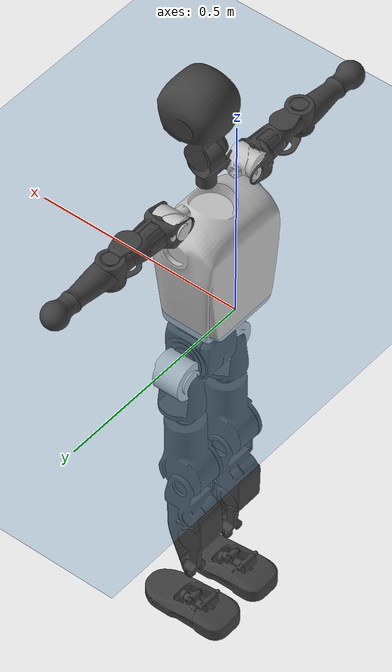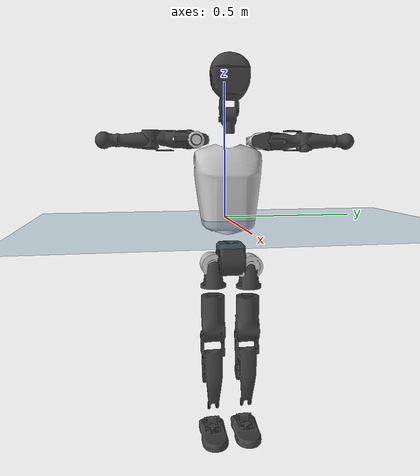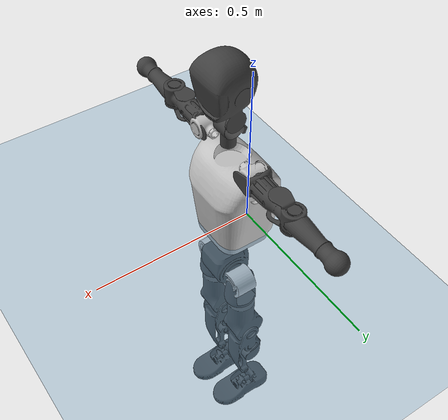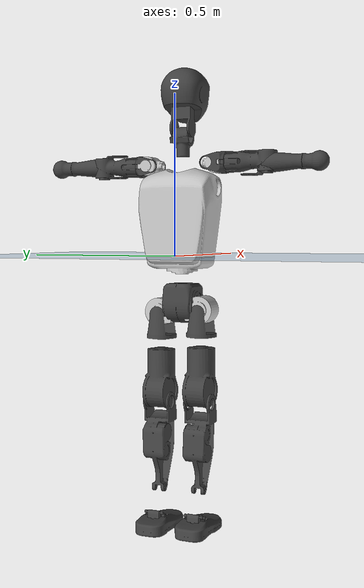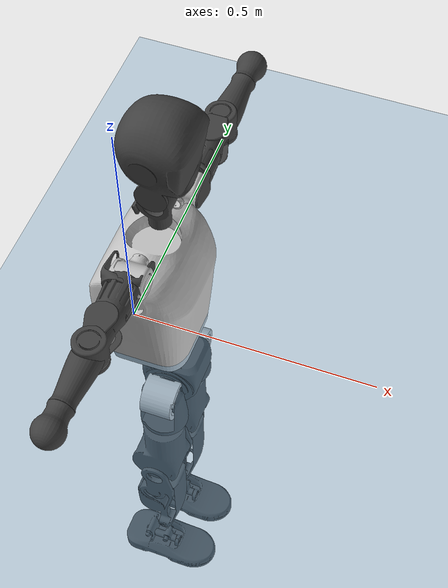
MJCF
<mujoco model="T1">
  <compiler angle="radian" assetdir="assets" balanceinertia="true" inertiafromgeom="false"/>

  <option timestep="0.005" density="1.2" viscosity="2e-05"/>

  <size nkey="1"/>

  <visual>
    <quality shadowsize="8192"/>
    <map shadowclip="0.5"/>
  </visual>

  <default>
    <default class="/">
      <joint armature="0.01" damping="0.01" frictionloss="0.1"/>
      <geom contype="0" conaffinity="0" group="1" solref="-1000 -80"/>
      <site size="0.01 0.005 0.005" group="5"/>
      <general forcelimited="true" biastype="affine" gainprm="25" biasprm="0 -25 -0.6"/>
      <default class="t1">
        <geom rgba="0.25 0.25 0.25 1"/>
        <default class="visual">
          <geom type="mesh" group="2"/>
        </default>
        <default class="collision">
          <geom group="3"/>
        </default>
        <default class="foot">
          <geom size="0.1115 0.05 0.015" type="box" condim="6" group="4" priority="1" solimp="0.015 1 0.015"/>
        </default>
        <default class="reward_collision_sphere">
          <geom group="5" rgba="1 0 0 1"/>
        </default>
      </default>
    </default>
  </default>

  <asset>
    <texture type="skybox" colorspace="auto" name="//unnamed_texture_0" builtin="gradient" rgb1="0.95 0.95 0.95" rgb2="0.95 0.95 0.95" width="100" height="600"/>
    <texture type="2d" colorspace="auto" name="texplane" builtin="checker" rgb1="0.345 0.575 0.748" rgb2="0.345 0.575 0.748" markrgb="1 1 1" width="512" height="512"/>
    <material name="MatPlane" class="/" texture="texplane" texuniform="true" texrepeat="2 2" specular="0.9"/>
    <mesh name="Trunk" class="/" file="Trunk.stl"/>
    <mesh name="H1" class="/" file="H1.stl"/>
    <mesh name="H2" class="/" file="H2.stl"/>
    <mesh name="AL1" class="/" file="AL1.stl"/>
    <mesh name="AL2" class="/" file="AL2.stl"/>
    <mesh name="AL3" class="/" file="AL3.stl"/>
    <mesh name="left_hand_link" class="/" file="left_hand_link.stl"/>
    <mesh name="AR1" class="/" file="AR1.stl"/>
    <mesh name="AR2" class="/" file="AR2.stl"/>
    <mesh name="AR3" class="/" file="AR3.stl"/>
    <mesh name="right_hand_link" class="/" file="right_hand_link.stl"/>
    <mesh name="Waist" class="/" file="Waist.stl"/>
    <mesh name="Hip_Pitch_Left" class="/" file="Hip_Pitch_Left.stl"/>
    <mesh name="Hip_Roll_Left" class="/" file="Hip_Roll_Left.stl"/>
    <mesh name="Hip_Yaw_Left" class="/" file="Hip_Yaw_Left.stl"/>
    <mesh name="Shank_Left" class="/" file="Shank_Left.stl"/>
    <mesh name="Ankle_Cross_Left" class="/" file="Ankle_Cross_Left.stl"/>
    <mesh name="left_foot_link" class="/" file="left_foot_link.stl"/>
    <mesh name="Hip_Pitch_Right" class="/" file="Hip_Pitch_Right.stl"/>
    <mesh name="Hip_Roll_Right" class="/" file="Hip_Roll_Right.stl"/>
    <mesh name="Hip_Yaw_Right" class="/" file="Hip_Yaw_Right.stl"/>
    <mesh name="Shank_Right" class="/" file="Shank_Right.stl"/>
    <mesh name="Ankle_Cross_Right" class="/" file="Ankle_Cross_Right.stl"/>
    <mesh name="right_foot_link" class="/" file="right_foot_link.stl"/>
  </asset>

  <worldbody>
    <geom name="floor" class="/" size="100 100 0.125" type="plane" group="0" material="MatPlane"/>
    <light name="toplight_shadow" class="/" pos="0 0 5" dir="0.0990148 0.0990148 -0.990148" type="directional" ambient="0.04 0.04 0.04" diffuse="0.55 0.55 0.55" specular="0.12 0.12 0.12"/>
    <light name="toplight_fill" class="/" pos="0 0 5" dir="0.0990148 0.0990148 -0.990148" type="directional" castshadow="false" ambient="0.04 0.04 0.04" diffuse="0.3 0.3 0.3" specular="0.08 0.08 0.08"/>
    <body name="trunk" childclass="t1" pos="0.00042521 0.00174268 -0.00426926" quat="1 -7.96186e-05 2.80666e-05 -0.000142667">
      <inertial pos="0.0606236 0.00253128 0.139445" quat="0.999885 -0.00617454 -0.00897929 0.0105669" mass="13.0966" diaginertia="0.194407 0.00814403 0.20919"/>
      <joint name="//unnamed_joint_0" type="free" armature="0" damping="0" frictionloss="0"/>
      <geom name="//unnamed_geom_1" class="visual" rgba="0.76 0.76 0.76 1" mesh="Trunk"/>
      <geom name="//unnamed_geom_2" class="collision" size="0.0777823 0.10371 0.155565" pos="0.0701046 0 0.156819" type="box"/>
      <geom name="//unnamed_geom_3" class="reward_collision_sphere" size="0.119266" pos="0.0701046 0 0.130682"/>
      <geom name="//unnamed_geom_4" class="reward_collision_sphere" size="0.0155565" pos="0.0701046 0.0540648 0"/>
      <geom name="//unnamed_geom_5" class="reward_collision_sphere" size="0.0155565" pos="0.0701046 -0.0540648 0"/>
      <geom name="//unnamed_geom_6" class="reward_collision_sphere" size="0.0155565" pos="0.0701046 0.0680581 0.235228"/>
      <geom name="//unnamed_geom_7" class="reward_collision_sphere" size="0.0155565" pos="0.0701046 -0.0680581 0.235228"/>
      <site name="imu" pos="0.00123659 -0.0290987 0.00189833" size="0.010371"/>
      <camera name="track" pos="0 -1.27211 0" quat="0.707107 0.707107 0 0" mode="trackcom"/>
      <camera name="ego_camera" pos="0.142546 0 0.548866" quat="-0.5 -0.5 0.5 0.5"/>
      <body name="H1" pos="0.0730109 0.0016711 0.31698" quat="0.999996 0.000494736 -0.0027302 3.95705e-05">
        <inertial pos="-0.00243161 -0.00384186 0.0745281" quat="0.76453 -0.0129098 0.00381739 0.644448" mass="0.528067" diaginertia="0.000531101 2.26822e-05 0.000559212"/>
        <joint name="AAHead_yaw" pos="0 0 0" axis="-0.000359787 -0.00184072 0.999998" range="-1.57799 1.41921" armature="0.00943335" damping="0.0230631" frictionloss="0.118026"/>
        <geom name="//unnamed_geom_8" class="visual" mesh="H1"/>
        <body name="H2" pos="-0.000147013 0.00169708 0.089851" quat="0.999991 -0.00280368 0.00328809 -7.64594e-05">
          <inertial pos="0.00939413 -0.00264116 0.124683" quat="0.987092 0.113017 -0.0856653 -0.0744191" mass="0.701716" diaginertia="0.00438426 0.000191166 0.00684714"/>
          <joint name="Head_pitch" pos="0 0 0" axis="0.00983236 -0.999791 0.0179102" stiffness="0.0121229" range="-1.19281 0.373922" armature="0.0112164" damping="0.00553527" frictionloss="0.111425"/>
          <geom name="//unnamed_geom_9" class="visual" mesh="H2"/>
          <geom name="//unnamed_geom_10" class="collision" size="0.0829678" pos="0.0116841 0 0.143751"/>
          <geom name="//unnamed_geom_11" class="reward_collision_sphere" size="0.0933387" pos="0.0233682 0 0.130682"/>
        </body>
      </body>
      <body name="AL1" pos="0.0713154 0.0691086 0.28935" quat="1 0.000657449 -0.000288611 -0.000498016">
        <inertial pos="-0.000353236 0.0306887 0.000434442" quat="0.510082 0.47185 -0.500984 0.515935" mass="0.636961" diaginertia="0.00316827 0.000142493 0.00114292"/>
        <joint name="Left_Shoulder_Pitch" pos="0 0 0" axis="0.00507879 0.999958 -0.00764018" stiffness="0.00821284" range="-3.44863 1.22127" armature="0.0122991" damping="0.0160879" frictionloss="0.108492"/>
        <geom name="//unnamed_geom_12" class="visual" rgba="0.76 0.76 0.76 1" mesh="AL1"/>
        <body name="AL2" pos="0.0037814 0.0305163 -0.000518736" quat="0.999995 -0.000791457 -0.00198931 -0.0023733">
          <inertial pos="-0.00349163 0.0223315 0.000192106" quat="0.483856 0.51407 -0.49429 0.50724" mass="0.188261" diaginertia="0.000926089 3.76905e-05 0.00074178"/>
          <joint name="Left_Shoulder_Roll" pos="0 0 0" axis="-0.99988 -0.002954 -0.0152301" range="-1.56045 1.70862" armature="0.00890329" damping="0" frictionloss="0.0928361"/>
          <geom name="//unnamed_geom_13" class="visual" mesh="AL2"/>
          <body name="AL3" pos="0.00339188 0.0390504 -0.000353686" quat="0.999996 -0.000753822 -0.00232811 -0.00165576">
            <inertial pos="-0.00700781 0.0559862 -0.00151093" quat="0.678309 0.734604 0.0140701 0.0074813" mass="1.02251" diaginertia="0.0248541 0.00106345 0.00217479"/>
            <joint name="Left_Elbow_Pitch" pos="0 0 0" axis="-0.00199151 -0.999984 0.00536288" range="-2.31325 2.11305" armature="0.0078441" damping="0.0110829" frictionloss="0.0630894"/>
            <geom name="//unnamed_geom_14" class="visual" mesh="AL3"/>
            <geom name="//unnamed_geom_15" class="collision" size="0.0311129 0.0777823" pos="0 0.0318028 0" quat="0.707105 0.707108 0 0" type="cylinder"/>
            <geom name="//unnamed_geom_16" class="reward_collision_sphere" size="0.0373355"/>
            <body name="left_hand_link" pos="0.00281876 0.0931495 0.00257189" quat="0.999993 -0.00206957 0.000257808 0.00316057">
              <inertial pos="-0.00181203 0.0659127 0.00249027" quat="0.709053 0.705128 -0.00515897 0.00353313" mass="0.371302" diaginertia="0.0161427 0.000797871 0.000875784"/>
              <joint name="Left_Elbow_Yaw" pos="0 0 0" axis="-0.00138687 0.0268093 0.99964" range="-2.41196 -0.154429" armature="0.0127164" damping="0.0332578" frictionloss="0.09543"/>
              <geom name="//unnamed_geom_17" class="visual" mesh="left_hand_link"/>
              <geom name="//unnamed_geom_18" class="collision" size="0.0311129 0.090746" pos="0 0.0826874 0" quat="0.707105 0.707108 0 0" type="cylinder"/>
              <geom name="//unnamed_geom_19" class="reward_collision_sphere" size="0.0518548"/>
              <geom name="//unnamed_geom_20" class="reward_collision_sphere" size="0.0362984" pos="0 0.0699663 0"/>
              <geom name="//unnamed_geom_21" class="reward_collision_sphere" size="0.0362984" pos="0 0.136752 0"/>
            </body>
          </body>
        </body>
      </body>
      <body name="AR1" pos="0.065121 -0.0719558 0.292709" quat="1 -0.000111524 0.000293059 0.000344544">
        <inertial pos="-0.0012266 -0.0230858 0.0017603" quat="0.507751 0.495171 -0.50183 0.495138" mass="0.578766" diaginertia="0.0029276 0.000137484 0.00109594"/>
        <joint name="Right_Shoulder_Pitch" pos="0 0 0" axis="0.0369581 -0.999174 -0.0168954" stiffness="0.00504829" range="-1.22143 3.17295" armature="0.00955459" damping="0.00256404" frictionloss="0.141238"/>
        <geom name="//unnamed_geom_22" class="visual" rgba="0.76 0.76 0.76 1" mesh="AR1"/>
        <body name="AR2" pos="-0.0084031 -0.0231546 0.00101461" quat="1 -2.05212e-05 1.05159e-05 -8.58517e-06">
          <inertial pos="0.000417206 -0.0242413 0.00322387" quat="0.513238 0.487075 -0.51155 0.487505" mass="0.149188" diaginertia="0.000795802 3.35468e-05 0.000600366"/>
          <joint name="Right_Shoulder_Roll" pos="0 0 0" axis="-0.999665 0.00900805 -0.0242745" stiffness="0.0230588" range="-1.72039 1.49075" armature="0.00940573" damping="0.0294066" frictionloss="0.078076"/>
          <geom name="//unnamed_geom_23" class="visual" mesh="AR2"/>
          <body name="AR3" pos="0.00551242 -0.0369867 0.00102799" quat="1 -0.000829016 0.000295612 -0.000174724">
            <inertial pos="-0.000443647 -0.0588018 0.00282464" quat="0.706392 0.707812 0.00229795 0.00251907" mass="0.952023" diaginertia="0.0248317 0.0011864 0.00209263"/>
            <joint name="Right_Elbow_Pitch" pos="0 0 0" axis="0.00519148 0.999963 -0.00693062" stiffness="0.0443602" range="-2.18007 2.37817" armature="0.00934438" damping="0" frictionloss="0.104364"/>
            <geom name="//unnamed_geom_24" class="visual" mesh="AR3"/>
            <geom name="//unnamed_geom_25" class="collision" size="0.0311129 0.0777823" pos="0 -0.0318028 0" quat="0.707105 0.707108 0 0" type="cylinder"/>
            <geom name="//unnamed_geom_26" class="reward_collision_sphere" size="0.0373355"/>
            <body name="right_hand_link" pos="-0.00191117 -0.092355 -0.0057152" quat="1 -0.000130666 -1.77512e-05 -2.69654e-05">
              <inertial pos="-0.0022408 -0.068828 0.00827952" quat="0.711291 0.702779 0.00993133 -0.00824972" mass="0.415301" diaginertia="0.0188848 0.000854986 0.000861868"/>
              <joint name="Right_Elbow_Yaw" pos="0 0 0" axis="0.0146636 0.00968633 0.999846" range="-0.00284619 2.32648" armature="0.00947075" damping="0.00719409" frictionloss="0.092578"/>
              <geom name="//unnamed_geom_27" class="visual" mesh="right_hand_link"/>
              <geom name="//unnamed_geom_28" class="collision" size="0.0311129 0.090746" pos="0 -0.0826874 0" quat="0.707105 0.707108 0 0" type="cylinder"/>
              <geom name="//unnamed_geom_29" class="reward_collision_sphere" size="0.0518548"/>
              <geom name="//unnamed_geom_30" class="reward_collision_sphere" size="0.0362984" pos="0 -0.0699663 0"/>
              <geom name="//unnamed_geom_31" class="reward_collision_sphere" size="0.0362984" pos="0 -0.136752 0"/>
            </body>
          </body>
        </body>
      </body>
      <body name="Waist" pos="0.0821908 0.00536168 -0.149372" quat="0.999998 0.000604067 0.00206979 2.29364e-05">
        <inertial pos="0.00575409 0.00439941 0.0117567" quat="0.983815 0.000467355 -0.179141 0.00411839" mass="3.02326" diaginertia="0.012613 0.000613506 0.0200386"/>
        <joint name="Waist" pos="0 0 0" axis="-0.00705153 -0.0117821 0.999906" range="-1.59631 1.54663" armature="0.0107138" damping="0.00846497" frictionloss="0.140184"/>
        <geom name="//unnamed_geom_32" class="visual" mesh="Waist"/>
        <body name="Hip_Pitch_Left" pos="-3.70368e-05 0.074041 -0.00472479" quat="0.999997 0.000478697 0.00197918 0.00135512">
          <inertial pos="0.00317653 -0.00611226 -0.0232219" quat="0.974283 0.225122 0.00950119 -0.0014405" mass="1.14395" diaginertia="0.00391452 0.00013919 0.00491735"/>
          <joint name="Left_Hip_Pitch" pos="0 0 0" axis="0.0030827 0.999961 0.00822826" stiffness="0.0332734" range="-1.8469 1.58267" armature="0.00989828" damping="0.0194317" frictionloss="0.102671"/>
          <geom name="//unnamed_geom_33" class="visual" rgba="0.76 0.76 0.76 1" mesh="Hip_Pitch_Left"/>
          <body name="Hip_Roll_Left" pos="-0.00607276 -0.00260242 -0.0284332" quat="0.999991 -0.0027122 -0.00143155 -0.00301072">
            <inertial pos="0.00790734 0.00487523 -0.069242" quat="0.684091 0.0150774 -0.0204808 0.728953" mass="0.449728" diaginertia="0.00413559 0.000165322 0.00199183"/>
            <joint name="Left_Hip_Roll" pos="0 0 0" axis="-0.99909 0.0419512 -0.00773426" range="-1.48841 0.0704625" armature="0.00741359" damping="0.016585" frictionloss="0.0927168"/>
            <geom name="//unnamed_geom_34" class="visual" mesh="Hip_Roll_Left"/>
            <geom name="//unnamed_geom_35" class="reward_collision_sphere" size="0.0570403"/>
            <body name="Hip_Yaw_Left" pos="-0.00901064 -0.00237696 -0.112479" quat="0.999994 -0.00154327 0.00284831 -0.00125534">
              <inertial pos="-0.00632582 -0.00289978 -0.115052" quat="0.692809 -0.0407455 -0.0357214 0.719082" mass="2.31963" diaginertia="0.057521 0.00260355 0.00919736"/>
              <joint name="Left_Hip_Yaw" pos="0 0 0" axis="0.00241108 -0.00650101 -0.999976" range="-0.982866 1.14929" armature="0.0113643" damping="0" frictionloss="0.0974605"/>
              <geom name="//unnamed_geom_36" class="visual" mesh="Hip_Yaw_Left"/>
              <geom name="//unnamed_geom_37" class="collision" size="0.0518548 0.0829678" type="cylinder"/>
              <body name="Shank_Left" pos="-0.0166734 -0.000180569 -0.167544" quat="0.999999 -0.000909859 0.000652645 0.000349416">
                <inertial pos="-0.0120333 0.00590042 -0.160688" quat="0.997898 0.00117487 -0.0282296 0.0583192" mass="1.9899" diaginertia="0.0763282 0.00380071 0.00735022"/>
                <joint name="Left_Knee_Pitch" pos="0 0 0" axis="0.0202365 0.999787 0.00407483" range="-0.040951 2.32646" armature="0.0110525" damping="0.00114665" frictionloss="0.114837"/>
                <geom name="//unnamed_geom_38" class="visual" mesh="Shank_Left"/>
                <geom name="//unnamed_geom_39" class="collision" size="0.0518548 0.0777823" pos="0 0 -0.156819" type="cylinder"/>
                <geom name="//unnamed_geom_40" class="reward_collision_sphere" size="0.0674113"/>
                <body name="Ankle_Cross_Left" pos="0.00134575 0.00293818 -0.373107" quat="1 -0.000306821 -0.000434502 -0.000725284">
                  <inertial pos="-0.00814712 0.000501384 -0.00873248" quat="0.444398 0.545748 0.55317 0.445727" mass="0.0748092" diaginertia="6.20931e-05 2.68316e-06 4.29346e-05"/>
                  <joint name="Left_Ankle_Pitch" pos="0 0 0" axis="0.00462734 0.999987 -0.00229135" range="-0.88363 0.357667" armature="0.0112325" damping="0.00138043" frictionloss="0.122929"/>
                  <geom name="//unnamed_geom_41" class="visual" mesh="Ankle_Cross_Left"/>
                  <body name="left_foot_link" pos="0.000725347 -0.00171414 -0.0127587" quat="1 0.00054267 0.000226121 -9.77747e-05">
                    <inertial pos="-0.000199897 -0.004754 -0.0131683" quat="0.0127071 0.615948 0.00209287 0.787681" mass="0.836547" diaginertia="0.00528826 0.000244951 0.00830436"/>
                    <joint name="Left_Ankle_Roll" pos="0 0 0" axis="-0.999924 0.00933377 -0.00811566" range="-0.449057 0.299329" armature="0.00654945" damping="0.0100493" frictionloss="0.104502"/>
                    <geom name="//unnamed_geom_42" class="visual" mesh="left_foot_link"/>
                    <geom name="left_foot" class="foot" size="0.100175 0.0593702 0.0151206" pos="0.0116841 0 -0.0196024"/>
                    <geom name="//unnamed_geom_44" class="reward_collision_sphere" size="0.053929" pos="0.0116841 0 -0.0196024"/>
                    <geom name="//unnamed_geom_45" class="reward_collision_sphere" size="0.0311129" pos="0.110999 -0.0146293 -0.0196024"/>
                    <geom name="//unnamed_geom_46" class="reward_collision_sphere" size="0.0311129" pos="-0.0817887 -0.0146293 -0.0196024"/>
                    <site name="left_foot" class="foot" pos="0.0116841 0 -0.0196024" size="0.010371"/>
                  </body>
                </body>
              </body>
            </body>
          </body>
        </body>
        <body name="Hip_Pitch_Right" pos="-0.00538243 -0.0681257 0.00439069" quat="0.999999 0.000639066 -0.00109014 0.000876969">
          <inertial pos="0.00656515 0.00613821 -0.023617" quat="0.974238 -0.225269 0.00642138 -0.00849546" mass="1.1619" diaginertia="0.00394937 0.00015506 0.00480976"/>
          <joint name="Right_Hip_Pitch" pos="0 0 0" axis="0.00440461 -0.999989 0.00164238" stiffness="0.00563312" range="-1.53971 1.8412" armature="0.00587673" damping="0.00308541" frictionloss="0.110602"/>
          <geom name="//unnamed_geom_47" class="visual" rgba="0.76 0.76 0.76 1" mesh="Hip_Pitch_Right"/>
          <body name="Hip_Roll_Right" pos="0.000390204 0.00209071 -0.0287734" quat="0.999999 0.000104602 0.00128983 -6.13399e-05">
            <inertial pos="0.00263347 0.00708945 -0.0661408" quat="0.691766 -0.00504392 -0.0288976 0.721526" mass="0.487787" diaginertia="0.00432533 0.000179194 0.00216927"/>
            <joint name="Right_Hip_Roll" pos="0 0 0" axis="-0.999877 0.0150664 -0.00445307" range="-0.242484 1.57931" armature="0.00983877" damping="0.0149822" frictionloss="0.12662"/>
            <geom name="//unnamed_geom_48" class="visual" mesh="Hip_Roll_Right"/>
            <geom name="//unnamed_geom_49" class="reward_collision_sphere" size="0.0570403"/>
            <body name="Hip_Yaw_Right" pos="-0.00497831 -0.00202104 -0.111509" quat="0.999998 0.000213412 0.00188668 -0.000651047">
              <inertial pos="-0.00810705 0.00843253 -0.117556" quat="0.714478 -0.0315894 -0.0336313 0.698135" mass="2.61507" diaginertia="0.0621313 0.00292737 0.010839"/>
              <joint name="Right_Hip_Yaw" pos="0 0 0" axis="0.00152276 0.0107841 -0.999941" range="-0.966186 0.899338" armature="0.00963044" damping="0.00761376" frictionloss="0.105217"/>
              <geom name="//unnamed_geom_50" class="visual" mesh="Hip_Yaw_Right"/>
              <geom name="//unnamed_geom_51" class="collision" size="0.0518548 0.0829678" type="cylinder"/>
              <body name="Shank_Right" pos="-0.014467 -0.0017595 -0.175323" quat="1 0.000607009 -0.000590558 0.000223136">
                <inertial pos="-0.00815737 0.000202954 -0.159561" quat="0.999053 0.00207852 -0.0309804 -0.0304647" mass="2.07752" diaginertia="0.090433 0.00385875 0.00794219"/>
                <joint name="Right_Knee_Pitch" pos="0 0 0" axis="0.0241774 -0.999614 -0.0136632" stiffness="0.0278771" range="-2.37004 -0.0143647" armature="0.0103734" damping="0.012447" frictionloss="0.111762"/>
                <geom name="//unnamed_geom_52" class="visual" mesh="Shank_Right"/>
                <geom name="//unnamed_geom_53" class="collision" size="0.0518548 0.0777823" pos="0 0 -0.156819" type="cylinder"/>
                <geom name="//unnamed_geom_54" class="reward_collision_sphere" size="0.0674113"/>
                <body name="Ankle_Cross_Right" pos="-0.000452287 -0.00241555 -0.368184" quat="0.999997 0.000574915 0.00211575 -0.00118163">
                  <inertial pos="-0.00563925 0.00122123 -0.0034886" quat="0.457364 0.532138 0.572041 0.424755" mass="0.0860595" diaginertia="7.50051e-05 2.70824e-06 5.07922e-05"/>
                  <joint name="Right_Ankle_Pitch" pos="0 0 0" axis="0.0185663 -0.999676 0.0174364" stiffness="0.0247666" range="-0.421918 0.867597" armature="0.0100342" damping="0.0258037" frictionloss="0.128409"/>
                  <geom name="//unnamed_geom_55" class="visual" mesh="Ankle_Cross_Right"/>
                  <body name="right_foot_link" pos="-0.00159583 0.00163547 -0.0184585" quat="1 -7.60298e-05 7.22687e-05 -0.000104961">
                    <inertial pos="0.00835705 0.00367101 -0.0124925" quat="0.00341312 0.633514 0.00714489 0.77369" mass="0.757567" diaginertia="0.00576525 0.000245626 0.00857812"/>
                    <joint name="Right_Ankle_Roll" pos="0 0 0" axis="-0.999999 0.00128677 0.000654739" range="-0.470715 0.482048" armature="0.00965071" damping="0" frictionloss="0.111963"/>
                    <geom name="//unnamed_geom_56" class="visual" mesh="right_foot_link"/>
                    <geom name="right_foot" class="foot" size="0.097129 0.0474121 0.0150114" pos="0.0116841 0 -0.0196024"/>
                    <geom name="//unnamed_geom_58" class="reward_collision_sphere" size="0.0414839"/>
                    <geom name="//unnamed_geom_59" class="reward_collision_sphere" size="0.0311129" pos="0.0116841 0 -0.0196024"/>
                    <geom name="//unnamed_geom_60" class="reward_collision_sphere" size="0.0311129" pos="0.110999 0.0146293 -0.0196024"/>
                    <geom name="//unnamed_geom_61" class="reward_collision_sphere" size="0.0311129" pos="-0.0817887 0.0146293 -0.0196024"/>
                    <site name="right_foot" class="foot" pos="0.0116841 0 -0.0196024" size="0.010371"/>
                  </body>
                </body>
              </body>
            </body>
          </body>
        </body>
      </body>
    </body>
  </worldbody>

  <contact>
    <pair class="/" geom1="floor" geom2="left_foot" name="//unnamed_contact_0"/>
    <pair class="/" geom1="floor" geom2="right_foot" name="//unnamed_contact_1"/>
  </contact>

  <actuator>
    <general name="AAHead_yaw" class="/" joint="AAHead_yaw" forcerange="-6.33882 6.33882" gainprm="27.0288" biasprm="0 -27.0288 -0.658351"/>
    <general name="Head_pitch" class="/" joint="Head_pitch" forcerange="-6.20898 6.20898" gainprm="27.0288" biasprm="0 -27.0288 -0.658351"/>
    <general name="Left_Shoulder_Pitch" class="/" joint="Left_Shoulder_Pitch" forcerange="-18.7945 18.7945" gainprm="27.0288" biasprm="0 -27.0288 -0.658351"/>
    <general name="Left_Shoulder_Roll" class="/" joint="Left_Shoulder_Roll" forcerange="-19.7497 19.7497" gainprm="27.0288" biasprm="0 -27.0288 -0.658351"/>
    <general name="Left_Elbow_Pitch" class="/" joint="Left_Elbow_Pitch" forcerange="-14.0733 14.0733" gainprm="27.0288" biasprm="0 -27.0288 -0.658351"/>
    <general name="Left_Elbow_Yaw" class="/" joint="Left_Elbow_Yaw" forcerange="-20.8472 20.8472" gainprm="27.0288" biasprm="0 -27.0288 -0.658351"/>
    <general name="Right_Shoulder_Pitch" class="/" joint="Right_Shoulder_Pitch" forcerange="-24.013 24.013" gainprm="27.0288" biasprm="0 -27.0288 -0.658351"/>
    <general name="Right_Shoulder_Roll" class="/" joint="Right_Shoulder_Roll" forcerange="-17.5929 17.5929" gainprm="27.0288" biasprm="0 -27.0288 -0.658351"/>
    <general name="Right_Elbow_Pitch" class="/" joint="Right_Elbow_Pitch" forcerange="-13.8416 13.8416" gainprm="27.0288" biasprm="0 -27.0288 -0.658351"/>
    <general name="Right_Elbow_Yaw" class="/" joint="Right_Elbow_Yaw" forcerange="-18.3819 18.3819" gainprm="27.0288" biasprm="0 -27.0288 -0.658351"/>
    <general name="Waist" class="/" joint="Waist" forcerange="-29.8789 29.8789" gainprm="27.0288" biasprm="0 -27.0288 -0.658351"/>
    <general name="Left_Hip_Pitch" class="/" joint="Left_Hip_Pitch" forcerange="-46.4651 46.4651" gainprm="27.0288" biasprm="0 -27.0288 -0.658351"/>
    <general name="Left_Hip_Roll" class="/" joint="Left_Hip_Roll" forcerange="-23.9429 23.9429" gainprm="27.0288" biasprm="0 -27.0288 -0.658351"/>
    <general name="Left_Hip_Yaw" class="/" joint="Left_Hip_Yaw" forcerange="-40.7202 40.7202" gainprm="27.0288" biasprm="0 -27.0288 -0.658351"/>
    <general name="Left_Knee_Pitch" class="/" joint="Left_Knee_Pitch" forcerange="-51.8491 51.8491" gainprm="27.0288" biasprm="0 -27.0288 -0.658351"/>
    <general name="Left_Ankle_Pitch" class="/" joint="Left_Ankle_Pitch" forcerange="-27.9307 27.9307" gainprm="27.0288" biasprm="0 -27.0288 -0.658351"/>
    <general name="Left_Ankle_Roll" class="/" joint="Left_Ankle_Roll" forcerange="-14.3575 14.3575" gainprm="27.0288" biasprm="0 -27.0288 -0.658351"/>
    <general name="Right_Hip_Pitch" class="/" joint="Right_Hip_Pitch" forcerange="-45.223 45.223" gainprm="27.0288" biasprm="0 -27.0288 -0.658351"/>
    <general name="Right_Hip_Roll" class="/" joint="Right_Hip_Roll" forcerange="-33.5307 33.5307" gainprm="27.0288" biasprm="0 -27.0288 -0.658351"/>
    <general name="Right_Hip_Yaw" class="/" joint="Right_Hip_Yaw" forcerange="-33.493 33.493" gainprm="27.0288" biasprm="0 -27.0288 -0.658351"/>
    <general name="Right_Knee_Pitch" class="/" joint="Right_Knee_Pitch" forcerange="-49.5938 49.5938" gainprm="27.0288" biasprm="0 -27.0288 -0.658351"/>
    <general name="Right_Ankle_Pitch" class="/" joint="Right_Ankle_Pitch" forcerange="-18.8509 18.8509" gainprm="27.0288" biasprm="0 -27.0288 -0.658351"/>
    <general name="Right_Ankle_Roll" class="/" joint="Right_Ankle_Roll" forcerange="-19.6236 19.6236" gainprm="27.0288" biasprm="0 -27.0288 -0.658351"/>
  </actuator>

  <sensor>
    <gyro site="imu" name="imu_angular_velocity"/>
    <velocimeter site="imu" name="imu_linear_velocity"/>
    <framelinvel objtype="site" objname="left_foot" name="left_foot_global_linear_velocity"/>
    <framelinvel objtype="site" objname="right_foot" name="right_foot_global_linear_velocity"/>
  </sensor>

  <keyframe>
    <key name="home" qpos="0 0 0.6385 1 0 0 0 0 0 0 1.4 0 -0.4 0 -1.4 0 0.4 0 -0.4 0 0 0.8 -0.4 0 0.4 0 0 -0.8 0.4 0"/>
  </keyframe>
</mujoco>
